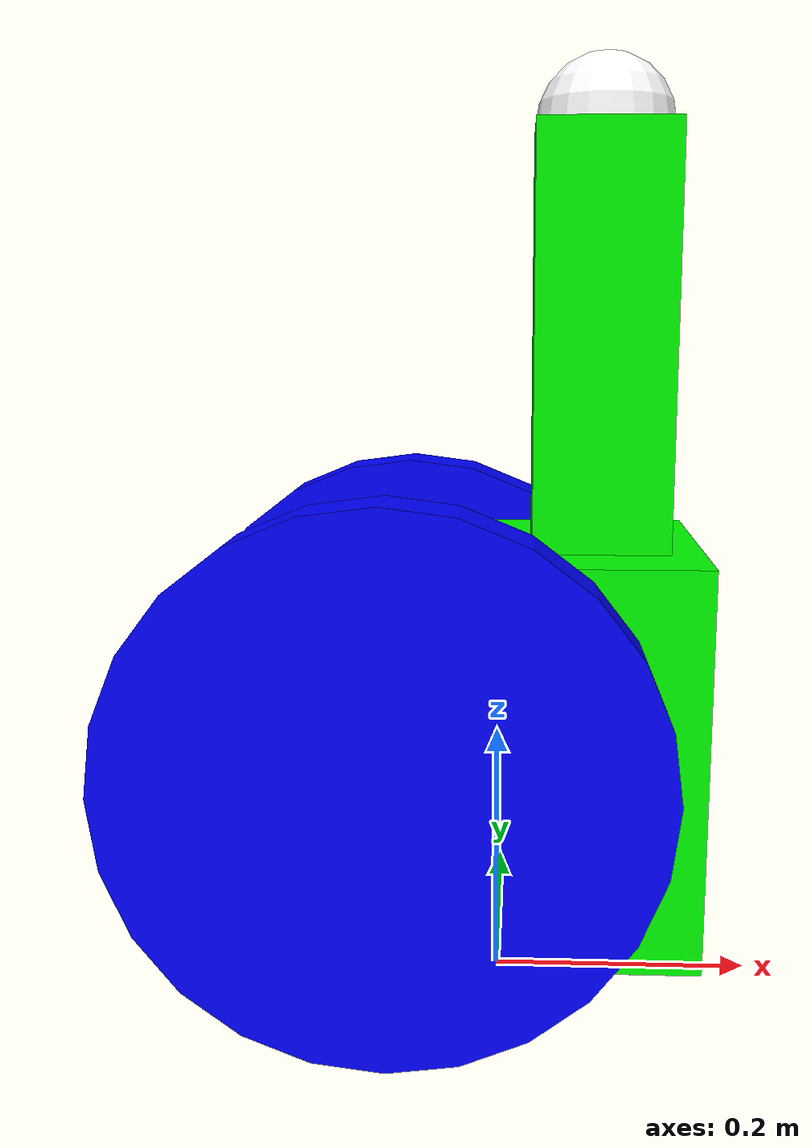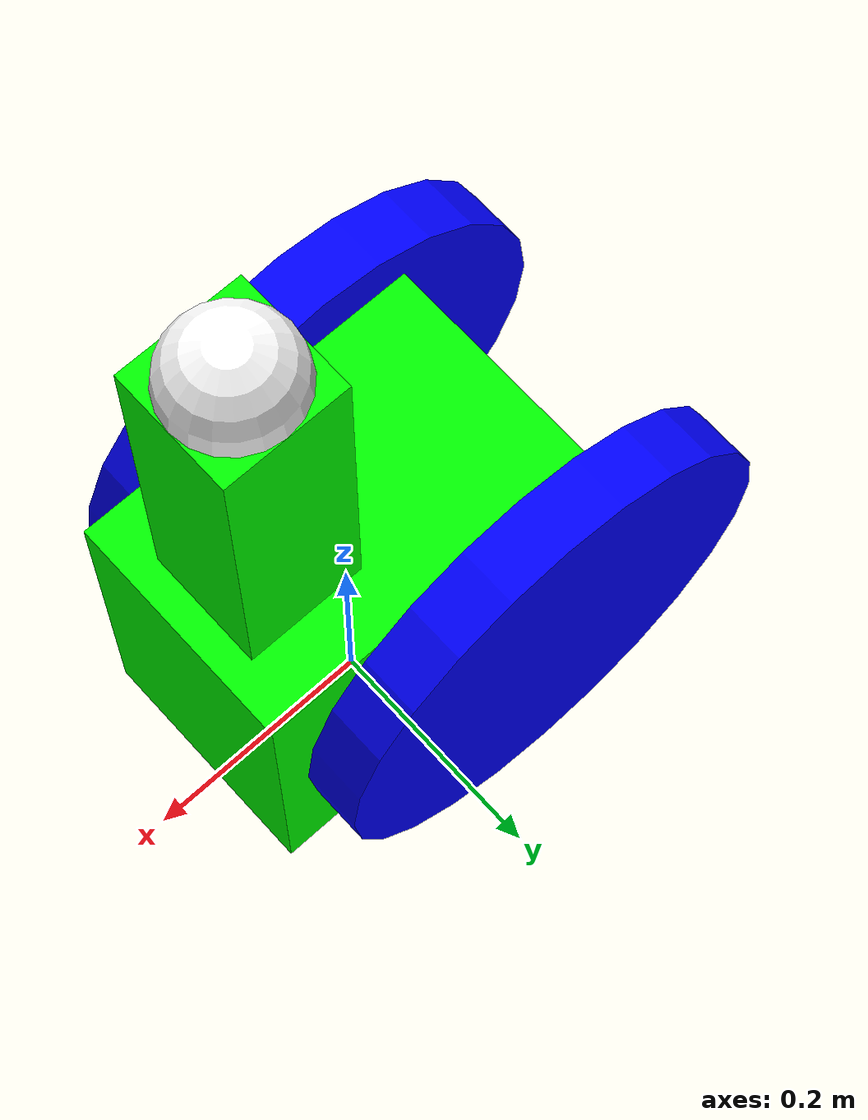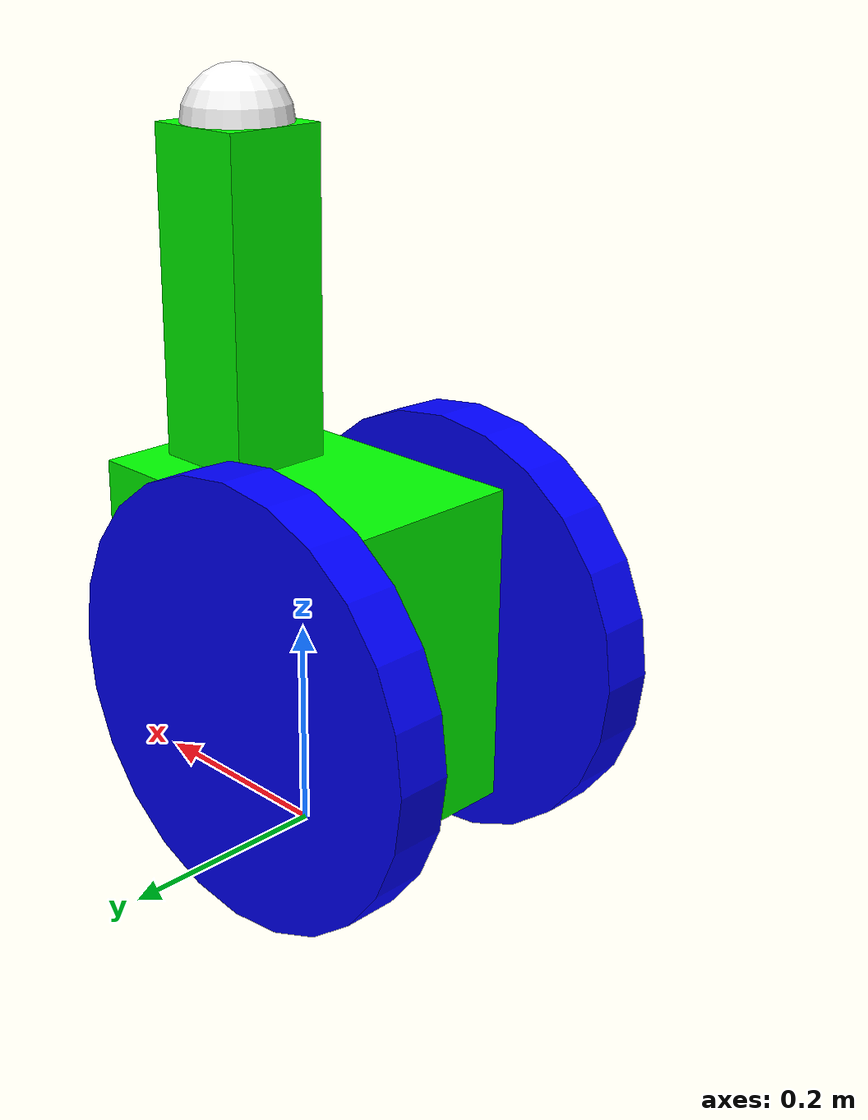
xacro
<?xml version="1.0"?>
<robot name="moving_car" xmlns:xacro="http://ros.org/wiki/xacro">

	<material name="blue">
		<color rgba="0 0 1 1"/>
	</material>

	<material name="green">
		<color rgba="0 1 0 1"/>
	</material>

	<material name="red">
		<color rgba="1 0 0 1"/>
	</material>

	<material name="white">
		<color rgba="1 1 1 1"/>
	</material>

	<xacro:property name="PI" value="3.1415926535897931"/>

	<xacro:property name="chassis_mass" value="10"/>
	<xacro:property name="chassis_width" value="0.2"/>
	<xacro:property name="chassis_height" value="0.3"/>
	<xacro:property name="chassis_depth" value="0.3"/>

	<xacro:property name="wheel_mass" value="5"/>
	<xacro:property name="d" value="0.2"/>
	<xacro:property name="wheel_length" value="0.05"/>
	<xacro:property name="wheel_position" value="0.1"/>

	<xacro:property name="casterRadius" value="${d-chassis_depth/2}"/>
	<xacro:property name="casterMass" value="5"/>

	<xacro:property name="camera_size" value="0.05"/>
	<xacro:property name="camera_mass" value="0.1"/>

	<xacro:property name="upperbox_height" value="0.1"/>
	<xacro:property name="upperbox_width" value="0.1"/>
	<xacro:property name="upperbox_depth" value="0.3"/>

	<macro name="box_inertia" params="m x y z">
	  	<inertia ixx="${m*(y*y+z*z)/12}" ixy = "0" ixz = "0"
	    		iyy="${m*(x*x+z*z)/12}" iyz = "0" izz="${m*(x*x+z*z)/12}"/>
	</macro>

	<macro name="cylinder_inertia" params="m r h">
	  	<inertia ixx="${m*(3*r*r+h*h)/12}" ixy = "0" ixz = "0"
	    		iyy="${m*(3*r*r+h*h)/12}" iyz = "0" izz="${m*r*r/2}"/>
	</macro>

	<macro name="sphere_inertia" params="m r">
	  	<inertia  ixx="${2*m*r*r/5}" ixy = "0" ixz = "0"
	    		iyy="${2*m*r*r/5}" iyz = "0" izz="${2*m*r*r/5}"/>
	</macro>

	<macro name="wheel" params="lr tY">
		<link name="${lr}_wheel">
		  	<collision>
		   		<origin xyz="0 0 0" rpy="0 ${PI/2} ${PI/2}" />
			    <geometry>
			      	<cylinder length="${wheel_length}" radius="${d}"/>
			    </geometry>
		  	</collision>

		  	<visual>
		    	<origin xyz="0 0 0" rpy="0 ${PI/2} ${PI/2}" />
		    	<geometry>
		      		<cylinder length="${wheel_length}" radius="${d}"/>
		    	</geometry>
		    	<material name="blue"/>
		  	</visual>

		  	<inertial>
		    	<origin xyz="0 0 0" rpy="0 ${PI/2} ${PI/2}" />
		    	<mass value="${wheel_mass}"/>
		    	<cylinder_inertia m="${wheel_mass}" r="${d}" h="${wheel_length}"/>
		  	</inertial>
		</link>

		<gazebo reference="${lr}_wheel">
		  	<mu1 value="200.0"/>
		  	<mu2 value="100.0"/>
		  	<kp  value="10000000.0" />
		  	<kd  value="1.0" />
		  	<material>Gazebo/Blue</material>
		</gazebo>

		<joint name="${lr}_wheel_hinge" type="continuous">
		  	<parent link="chassis"/>
		  	<child link="${lr}_wheel"/>
			<origin xyz="${-chassis_height/4}
						${tY * wheel_length/2 + tY*chassis_width/2}
						${d}" rpy="0 0 0" />
		  	<axis xyz="0 1 0" rpy="0 0 0" />
		  	<limit effort="100" velocity="100"/>
		  	<joint_properties damping="0.0" friction="0.0"/>
		</joint>

		<transmission name="${lr}_trans">
		  	<type>transmission_interface/SimpleTransmission</type>
		  	<joint name="${lr}_wheel_hinge">
		  		<hardwareInterface>EffortJointInterface</hardwareInterface>
		  	</joint>
		  	<actuator name="${lr}Motor">
		    	<hardwareInterface>EffortJointInterface</hardwareInterface>
		    	<mechanicalReduction>10</mechanicalReduction>
		  	</actuator>
		</transmission>

	</macro>

	<link name="upperbox">
		<visual>
			<origin xyz="0 0 0" rpy="0 0 0"/>
			<geometry>
				<box size="${upperbox_height} ${upperbox_width} ${upperbox_depth}"/>
			</geometry>
			<material name="green"/>
		</visual>
	</link>

	<joint name="upper_lower" type="fixed">
		<origin xyz="${chassis_height/4} 0 ${d+chassis_height/2+upperbox_depth/2}" rpy="0 0 0"/>
		<parent link="chassis"/>
		<child link="upperbox"/>
	</joint>

	<link name="base_link" />

	<gazebo reference="chassis">
	  	<material>Gazebo/Green</material>
	</gazebo>

	<joint name="base_joint" type="fixed">
	  	<parent link="base_link"/>
	  	<child link="chassis"/>
	</joint>

	<link name="chassis">
	  	<collision>
	    	<origin xyz="0 0 ${d}" rpy="0 0 0"/>
	    	<geometry>
	      		<box size="${chassis_height} ${chassis_width} ${chassis_depth}"/>
	    	</geometry>
	  	</collision>

	  	<visual>
	    	<origin xyz="0 0 ${d}" rpy="0 0 0"/>
	    	<geometry>
	      		<box size="${chassis_height} ${chassis_width} ${chassis_depth}"/>
	    	</geometry>
	    	<material name="green"/>
	  	</visual>

	  	<inertial>
	    	<origin xyz="0 0 ${d}" rpy="0 0 0"/>
	    	<mass value="${chassis_mass}"/>
	    	<box_inertia m="${chassis_mass}" x="${chassis_height}" y="${chassis_width}"
	    				z="${chassis_depth}"/>
	  	</inertial>
	</link>

	<joint name="fixed" type="fixed">
	  	<parent link="chassis"/>
	  	<child link="caster_wheel"/>
	</joint>

	<link name="caster_wheel">
	  <collision>
	    <origin xyz="${chassis_height/4} 0
	    				${d-chassis_depth/2}" rpy="0 0 0"/>
	    <geometry>
	      	<sphere radius="${casterRadius}"/>
	    </geometry>
	  </collision>

	  <visual>
	    	<origin xyz="${chassis_height/4} 0
	    				${d-chassis_depth/2}" rpy="0 0 0"/>
	    <geometry>
	      	<sphere radius="${casterRadius}"/>
	    </geometry>
	    <material name="red"/>
	  </visual>

	  <inertial>
	    <origin xyz="${chassis_height/4} 0
	    				${d-chassis_depth/2}" rpy="0 0 0"/>
	    <mass value="${casterMass}"/>
	    <sphere_inertia m="${casterMass}" r="${casterRadius}"/>
	  </inertial>
	</link>

	<gazebo reference="caster_wheel">
	  	<mu1>0.0</mu1>
	  	<mu2>0.0</mu2>
	  	<material>Gazebo/Green</material>
	</gazebo>

	<wheel lr="left" tY="1"/>
	<wheel lr="right" tY="-1"/>

	<joint name="camera_joint" type="fixed">
	    <origin
	    	xyz="0 0 0"
	    	rpy="0 0 0"/>
	    <parent link="upperbox"/>
	    <child link="camera"/>
	</joint>

	<link name="camera">
	  	<collision>
		    <origin xyz="0 0 ${upperbox_depth/2}" rpy="0 0 0"/>
		    <geometry>
		      	<sphere radius="${camera_size}"/>
		    </geometry>
	  	</collision>

	  	<visual>
		    <origin xyz="0 0 ${upperbox_depth/2}" rpy="0 0 0"/>
		    <geometry>
		      	<sphere radius="${camera_size}"/>
		    </geometry>
		    <material name="white"/>
	  	</visual>

	  	<inertial>
		    <mass value="${camera_mass}" />
		    <origin xyz="0 0 ${upperbox_depth/2}" rpy="0 0 0"/>
		    <box_inertia m="${camera_mass}" x="${camera_size}" y="${camera_size}" z="${camera_size}"/>
	  	</inertial>
	</link>

	<gazebo reference="camera">
	  	<material>Gazebo/White</material>
	  	<sensor type="camera" name="camera1">
	    	<update_rate>30.0</update_rate>
	    	<camera name="head">
		      	<horizontal_fov>1.3962634</horizontal_fov>
		      	<image>
			        <width>640</width>
          			<height>320</height>
          			<format>R8G8B8</format>
		      	</image>
		      	<clip>
		        	<near>0.02</near>
		        	<far>300</far>
		      	</clip>
		      	<noise>
          			<type>gaussian</type>
          			<mean>0.0</mean>
          			<stddev>0.007</stddev>
        		</noise>
	    	</camera>
	    	<plugin name="camera_controller" filename="libgazebo_ros_camera.so">
		      	<alwaysOn>true</alwaysOn>
		      	<updateRate>0.0</updateRate>
		      	<cameraName>mybot/camera</cameraName>
		      	<imageTopicName>image_raw</imageTopicName>
		      	<cameraInfoTopicName>camera_info</cameraInfoTopicName>
		      	<frameName>camera</frameName>
		      	<hackBaseline>0.07</hackBaseline>
		      	<distortionK1>0.0</distortionK1>
		      	<distortionK2>0.0</distortionK2>
		      	<distortionK3>0.0</distortionK3>
		      	<distortionT1>0.0</distortionT1>
		      	<distortionT2>0.0</distortionT2>
	    	</plugin>
	  	</sensor>
	</gazebo>

	<gazebo>
        <plugin name="gazebo_control" filename="libgazebo_ros_control.so">
            <robotNamespace>/</robotNamespace>
            <robotSimType>gazebo_ros_control/DefaultRobotHWSim</robotSimType>
         	<legacyModeNS>true</legacyModeNS>
        </plugin>
    </gazebo>

    <gazebo>
	 	<plugin name="differential_drive_controller" filename="libgazebo_ros_diff_drive.so">
		    <alwaysOn>true</alwaysOn>
		    <updateRate>100</updateRate>
		    <leftJoint>left_wheel_hinge</leftJoint>
		    <rightJoint>right_wheel_hinge</rightJoint>
		    <wheelSeparation>${chassis_width+wheel_length}</wheelSeparation>
		    <wheelDiameter>${2*d}</wheelDiameter>
		    <broadcastTF>1</broadcastTF>
			<wheelTorque>30</wheelTorque>
			<wheelAcceleration>1.8</wheelAcceleration>
			<commandTopic>cmd_vel</commandTopic>
			<odometryFrame>odom</odometryFrame>
			<odometryTopic>odom</odometryTopic>
			<rosDebugLevel>Debug</rosDebugLevel>
			<publishWheelTF>false</publishWheelTF>
			<robotNamespace>/</robotNamespace>
			<publishTf>1</publishTf>
			<publishWheelJointState>false</publishWheelJointState>
		    <robotBaseFrame>base_link</robotBaseFrame>
	  	</plugin>
	</gazebo>
</robot>
